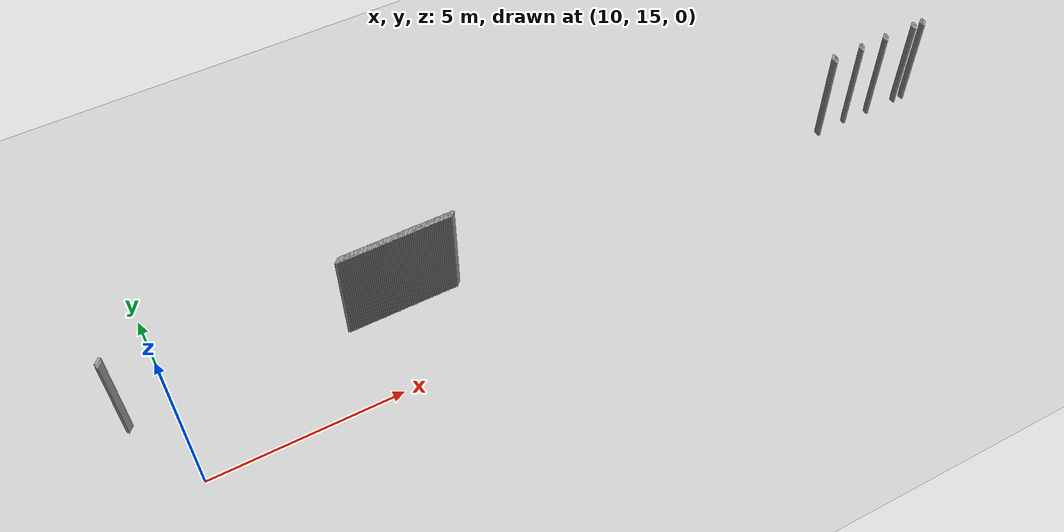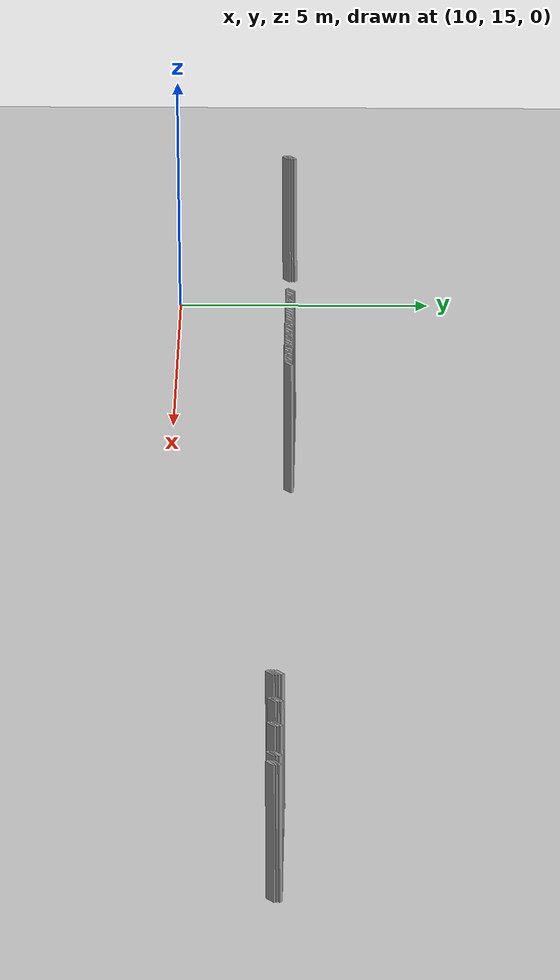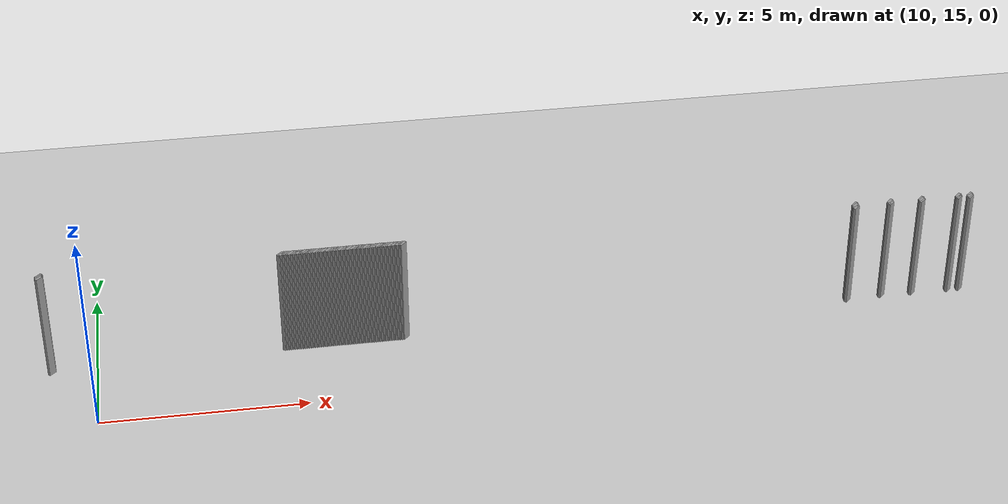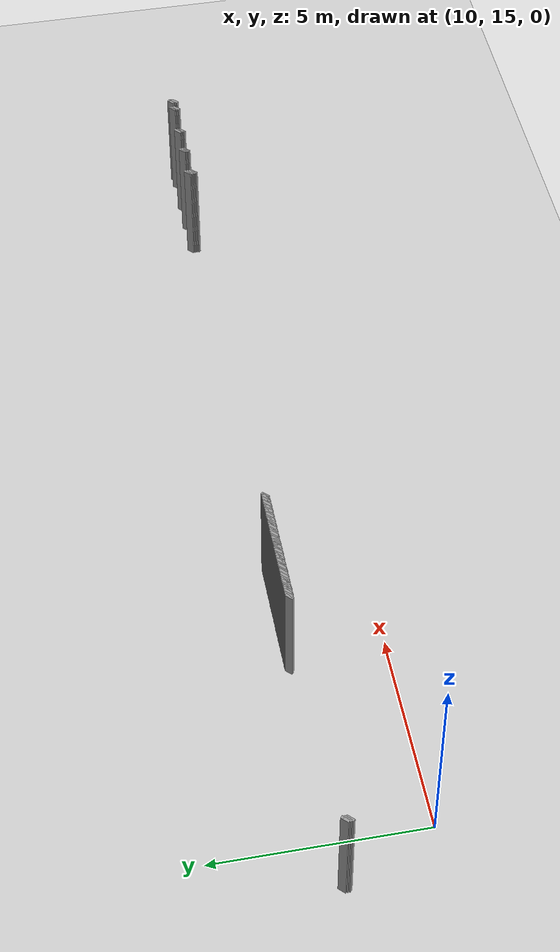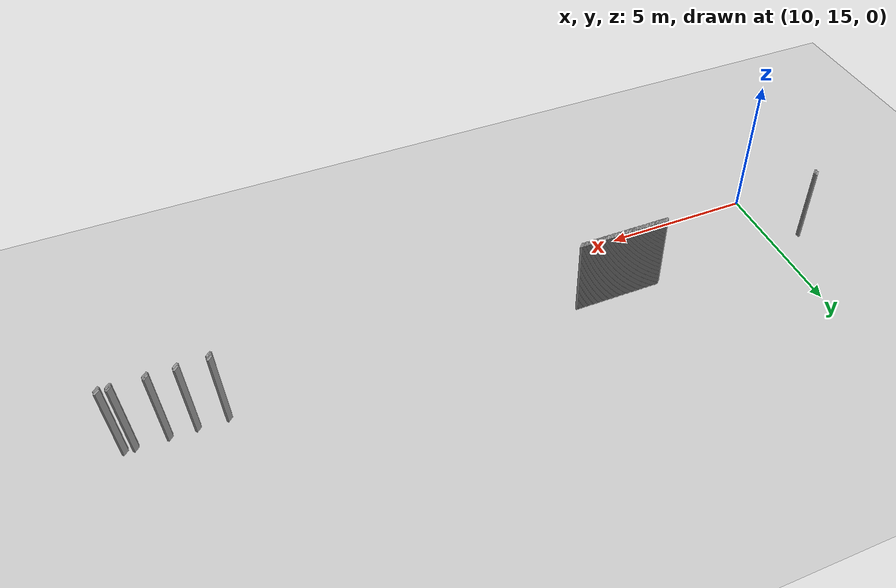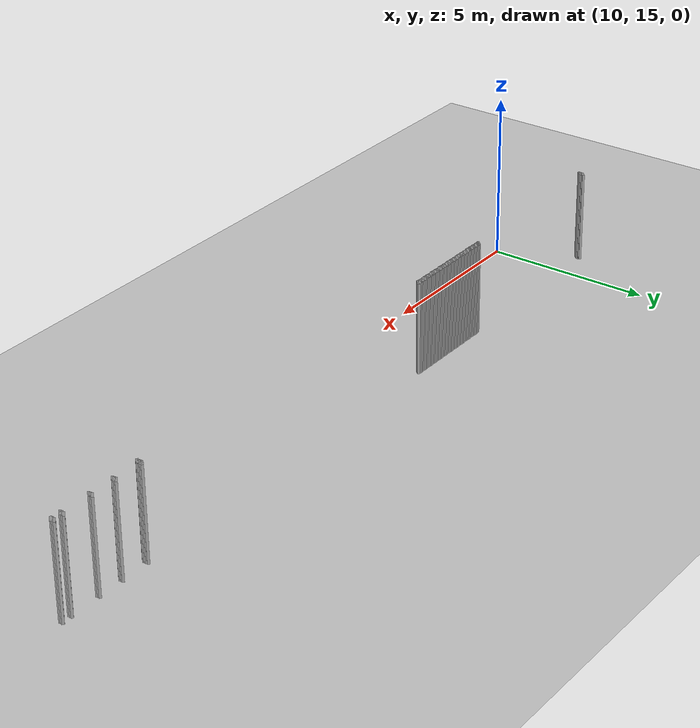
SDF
<sdf version="1.5">
 <world name="default">
  <include><uri>model://ground_plane</uri></include>
  <include><uri>model://sun</uri></include>
  <model name="grey_wall_947">
   <static>1</static>
   <link name="link">
    <pose>14.6 17.3  1.4 0 0 -0.785398163397</pose>
    <collision name="collision"><geometry><box><size>0.0707106781187 .2  2.8</size></box></geometry></collision>
    <visual name="visual">
     <cast_shadows>0</cast_shadows>
     <geometry><box><size>0.0707106781187 .2  2.8</size></box></geometry>
     <material>
      <script>
       <uri>model://grey_wall/materials/scripts</uri>
       <uri>model://grey_wall/materials/textures</uri>
       <name>vrc/grey_wall</name>
      </script>
     </material>
    </visual>
   </link>
  </model>
  <model name="grey_wall_948">
   <static>1</static>
   <link name="link">
    <pose>14.65 17.3  1.4 0 0 -0.785398163397</pose>
    <collision name="collision"><geometry><box><size>0.0707106781187 .2  2.8</size></box></geometry></collision>
    <visual name="visual">
     <cast_shadows>0</cast_shadows>
     <geometry><box><size>0.0707106781187 .2  2.8</size></box></geometry>
     <material>
      <script>
       <uri>model://grey_wall/materials/scripts</uri>
       <uri>model://grey_wall/materials/textures</uri>
       <name>vrc/grey_wall</name>
      </script>
     </material>
    </visual>
   </link>
  </model>
  <model name="grey_wall_949">
   <static>1</static>
   <link name="link">
    <pose>14.7 17.3  1.4 0 0 -0.785398163397</pose>
    <collision name="collision"><geometry><box><size>0.0707106781187 .2  2.8</size></box></geometry></collision>
    <visual name="visual">
     <cast_shadows>0</cast_shadows>
     <geometry><box><size>0.0707106781187 .2  2.8</size></box></geometry>
     <material>
      <script>
       <uri>model://grey_wall/materials/scripts</uri>
       <uri>model://grey_wall/materials/textures</uri>
       <name>vrc/grey_wall</name>
      </script>
     </material>
    </visual>
   </link>
  </model>
  <model name="grey_wall_950">
   <static>1</static>
   <link name="link">
    <pose>14.75 17.3  1.4 0 0 -0.785398163397</pose>
    <collision name="collision"><geometry><box><size>0.0707106781187 .2  2.8</size></box></geometry></collision>
    <visual name="visual">
     <cast_shadows>0</cast_shadows>
     <geometry><box><size>0.0707106781187 .2  2.8</size></box></geometry>
     <material>
      <script>
       <uri>model://grey_wall/materials/scripts</uri>
       <uri>model://grey_wall/materials/textures</uri>
       <name>vrc/grey_wall</name>
      </script>
     </material>
    </visual>
   </link>
  </model>
  <model name="grey_wall_951">
   <static>1</static>
   <link name="link">
    <pose>14.8 17.3  1.4 0 0 -0.785398163397</pose>
    <collision name="collision"><geometry><box><size>0.0707106781187 .2  2.8</size></box></geometry></collision>
    <visual name="visual">
     <cast_shadows>0</cast_shadows>
     <geometry><box><size>0.0707106781187 .2  2.8</size></box></geometry>
     <material>
      <script>
       <uri>model://grey_wall/materials/scripts</uri>
       <uri>model://grey_wall/materials/textures</uri>
       <name>vrc/grey_wall</name>
      </script>
     </material>
    </visual>
   </link>
  </model>
  <model name="grey_wall_952">
   <static>1</static>
   <link name="link">
    <pose>14.85 17.3  1.4 0 0 -0.785398163397</pose>
    <collision name="collision"><geometry><box><size>0.0707106781187 .2  2.8</size></box></geometry></collision>
    <visual name="visual">
     <cast_shadows>0</cast_shadows>
     <geometry><box><size>0.0707106781187 .2  2.8</size></box></geometry>
     <material>
      <script>
       <uri>model://grey_wall/materials/scripts</uri>
       <uri>model://grey_wall/materials/textures</uri>
       <name>vrc/grey_wall</name>
      </script>
     </material>
    </visual>
   </link>
  </model>
  <model name="grey_wall_953">
   <static>1</static>
   <link name="link">
    <pose>14.9 17.3  1.4 0 0 -0.785398163397</pose>
    <collision name="collision"><geometry><box><size>0.0707106781187 .2  2.8</size></box></geometry></collision>
    <visual name="visual">
     <cast_shadows>0</cast_shadows>
     <geometry><box><size>0.0707106781187 .2  2.8</size></box></geometry>
     <material>
      <script>
       <uri>model://grey_wall/materials/scripts</uri>
       <uri>model://grey_wall/materials/textures</uri>
       <name>vrc/grey_wall</name>
      </script>
     </material>
    </visual>
   </link>
  </model>
  <model name="grey_wall_954">
   <static>1</static>
   <link name="link">
    <pose>14.95 17.3  1.4 0 0 -0.785398163397</pose>
    <collision name="collision"><geometry><box><size>0.0707106781187 .2  2.8</size></box></geometry></collision>
    <visual name="visual">
     <cast_shadows>0</cast_shadows>
     <geometry><box><size>0.0707106781187 .2  2.8</size></box></geometry>
     <material>
      <script>
       <uri>model://grey_wall/materials/scripts</uri>
       <uri>model://grey_wall/materials/textures</uri>
       <name>vrc/grey_wall</name>
      </script>
     </material>
    </visual>
   </link>
  </model>
  <model name="grey_wall_955">
   <static>1</static>
   <link name="link">
    <pose>15.0 17.3  1.4 0 0 -0.785398163397</pose>
    <collision name="collision"><geometry><box><size>0.0707106781187 .2  2.8</size></box></geometry></collision>
    <visual name="visual">
     <cast_shadows>0</cast_shadows>
     <geometry><box><size>0.0707106781187 .2  2.8</size></box></geometry>
     <material>
      <script>
       <uri>model://grey_wall/materials/scripts</uri>
       <uri>model://grey_wall/materials/textures</uri>
       <name>vrc/grey_wall</name>
      </script>
     </material>
    </visual>
   </link>
  </model>
  <model name="grey_wall_956">
   <static>1</static>
   <link name="link">
    <pose>15.05 17.3  1.4 0 0 -0.785398163397</pose>
    <collision name="collision"><geometry><box><size>0.0707106781187 .2  2.8</size></box></geometry></collision>
    <visual name="visual">
     <cast_shadows>0</cast_shadows>
     <geometry><box><size>0.0707106781187 .2  2.8</size></box></geometry>
     <material>
      <script>
       <uri>model://grey_wall/materials/scripts</uri>
       <uri>model://grey_wall/materials/textures</uri>
       <name>vrc/grey_wall</name>
      </script>
     </material>
    </visual>
   </link>
  </model>
  <model name="grey_wall_957">
   <static>1</static>
   <link name="link">
    <pose>15.1 17.3  1.4 0 0 -0.785398163397</pose>
    <collision name="collision"><geometry><box><size>0.0707106781187 .2  2.8</size></box></geometry></collision>
    <visual name="visual">
     <cast_shadows>0</cast_shadows>
     <geometry><box><size>0.0707106781187 .2  2.8</size></box></geometry>
     <material>
      <script>
       <uri>model://grey_wall/materials/scripts</uri>
       <uri>model://grey_wall/materials/textures</uri>
       <name>vrc/grey_wall</name>
      </script>
     </material>
    </visual>
   </link>
  </model>
  <model name="grey_wall_958">
   <static>1</static>
   <link name="link">
    <pose>15.15 17.3  1.4 0 0 -0.785398163397</pose>
    <collision name="collision"><geometry><box><size>0.0707106781187 .2  2.8</size></box></geometry></collision>
    <visual name="visual">
     <cast_shadows>0</cast_shadows>
     <geometry><box><size>0.0707106781187 .2  2.8</size></box></geometry>
     <material>
      <script>
       <uri>model://grey_wall/materials/scripts</uri>
       <uri>model://grey_wall/materials/textures</uri>
       <name>vrc/grey_wall</name>
      </script>
     </material>
    </visual>
   </link>
  </model>
  <model name="grey_wall_959">
   <static>1</static>
   <link name="link">
    <pose>15.2 17.3  1.4 0 0 -0.785398163397</pose>
    <collision name="collision"><geometry><box><size>0.0707106781187 .2  2.8</size></box></geometry></collision>
    <visual name="visual">
     <cast_shadows>0</cast_shadows>
     <geometry><box><size>0.0707106781187 .2  2.8</size></box></geometry>
     <material>
      <script>
       <uri>model://grey_wall/materials/scripts</uri>
       <uri>model://grey_wall/materials/textures</uri>
       <name>vrc/grey_wall</name>
      </script>
     </material>
    </visual>
   </link>
  </model>
  <model name="grey_wall_960">
   <static>1</static>
   <link name="link">
    <pose>15.25 17.3  1.4 0 0 -0.785398163397</pose>
    <collision name="collision"><geometry><box><size>0.0707106781187 .2  2.8</size></box></geometry></collision>
    <visual name="visual">
     <cast_shadows>0</cast_shadows>
     <geometry><box><size>0.0707106781187 .2  2.8</size></box></geometry>
     <material>
      <script>
       <uri>model://grey_wall/materials/scripts</uri>
       <uri>model://grey_wall/materials/textures</uri>
       <name>vrc/grey_wall</name>
      </script>
     </material>
    </visual>
   </link>
  </model>
  <model name="grey_wall_961">
   <static>1</static>
   <link name="link">
    <pose>15.3 17.3  1.4 0 0 -0.785398163397</pose>
    <collision name="collision"><geometry><box><size>0.0707106781187 .2  2.8</size></box></geometry></collision>
    <visual name="visual">
     <cast_shadows>0</cast_shadows>
     <geometry><box><size>0.0707106781187 .2  2.8</size></box></geometry>
     <material>
      <script>
       <uri>model://grey_wall/materials/scripts</uri>
       <uri>model://grey_wall/materials/textures</uri>
       <name>vrc/grey_wall</name>
      </script>
     </material>
    </visual>
   </link>
  </model>
  <model name="grey_wall_962">
   <static>1</static>
   <link name="link">
    <pose>15.35 17.3  1.4 0 0 -0.785398163397</pose>
    <collision name="collision"><geometry><box><size>0.0707106781187 .2  2.8</size></box></geometry></collision>
    <visual name="visual">
     <cast_shadows>0</cast_shadows>
     <geometry><box><size>0.0707106781187 .2  2.8</size></box></geometry>
     <material>
      <script>
       <uri>model://grey_wall/materials/scripts</uri>
       <uri>model://grey_wall/materials/textures</uri>
       <name>vrc/grey_wall</name>
      </script>
     </material>
    </visual>
   </link>
  </model>
  <model name="grey_wall_963">
   <static>1</static>
   <link name="link">
    <pose>15.4 17.3  1.4 0 0 -0.785398163397</pose>
    <collision name="collision"><geometry><box><size>0.0707106781187 .2  2.8</size></box></geometry></collision>
    <visual name="visual">
     <cast_shadows>0</cast_shadows>
     <geometry><box><size>0.0707106781187 .2  2.8</size></box></geometry>
     <material>
      <script>
       <uri>model://grey_wall/materials/scripts</uri>
       <uri>model://grey_wall/materials/textures</uri>
       <name>vrc/grey_wall</name>
      </script>
     </material>
    </visual>
   </link>
  </model>
  <model name="grey_wall_964">
   <static>1</static>
   <link name="link">
    <pose>15.45 17.3  1.4 0 0 -0.785398163397</pose>
    <collision name="collision"><geometry><box><size>0.0707106781187 .2  2.8</size></box></geometry></collision>
    <visual name="visual">
     <cast_shadows>0</cast_shadows>
     <geometry><box><size>0.0707106781187 .2  2.8</size></box></geometry>
     <material>
      <script>
       <uri>model://grey_wall/materials/scripts</uri>
       <uri>model://grey_wall/materials/textures</uri>
       <name>vrc/grey_wall</name>
      </script>
     </material>
    </visual>
   </link>
  </model>
  <model name="grey_wall_965">
   <static>1</static>
   <link name="link">
    <pose>15.5 17.3  1.4 0 0 -0.785398163397</pose>
    <collision name="collision"><geometry><box><size>0.0707106781187 .2  2.8</size></box></geometry></collision>
    <visual name="visual">
     <cast_shadows>0</cast_shadows>
     <geometry><box><size>0.0707106781187 .2  2.8</size></box></geometry>
     <material>
      <script>
       <uri>model://grey_wall/materials/scripts</uri>
       <uri>model://grey_wall/materials/textures</uri>
       <name>vrc/grey_wall</name>
      </script>
     </material>
    </visual>
   </link>
  </model>
  <model name="grey_wall_966">
   <static>1</static>
   <link name="link">
    <pose>15.55 17.3  1.4 0 0 -0.785398163397</pose>
    <collision name="collision"><geometry><box><size>0.0707106781187 .2  2.8</size></box></geometry></collision>
    <visual name="visual">
     <cast_shadows>0</cast_shadows>
     <geometry><box><size>0.0707106781187 .2  2.8</size></box></geometry>
     <material>
      <script>
       <uri>model://grey_wall/materials/scripts</uri>
       <uri>model://grey_wall/materials/textures</uri>
       <name>vrc/grey_wall</name>
      </script>
     </material>
    </visual>
   </link>
  </model>
  <model name="grey_wall_967">
   <static>1</static>
   <link name="link">
    <pose>15.6 17.3  1.4 0 0 -0.785398163397</pose>
    <collision name="collision"><geometry><box><size>0.0707106781187 .2  2.8</size></box></geometry></collision>
    <visual name="visual">
     <cast_shadows>0</cast_shadows>
     <geometry><box><size>0.0707106781187 .2  2.8</size></box></geometry>
     <material>
      <script>
       <uri>model://grey_wall/materials/scripts</uri>
       <uri>model://grey_wall/materials/textures</uri>
       <name>vrc/grey_wall</name>
      </script>
     </material>
    </visual>
   </link>
  </model>
  <model name="grey_wall_968">
   <static>1</static>
   <link name="link">
    <pose>15.65 17.3  1.4 0 0 -0.785398163397</pose>
    <collision name="collision"><geometry><box><size>0.0707106781187 .2  2.8</size></box></geometry></collision>
    <visual name="visual">
     <cast_shadows>0</cast_shadows>
     <geometry><box><size>0.0707106781187 .2  2.8</size></box></geometry>
     <material>
      <script>
       <uri>model://grey_wall/materials/scripts</uri>
       <uri>model://grey_wall/materials/textures</uri>
       <name>vrc/grey_wall</name>
      </script>
     </material>
    </visual>
   </link>
  </model>
  <model name="grey_wall_969">
   <static>1</static>
   <link name="link">
    <pose>15.7 17.3  1.4 0 0 -0.785398163397</pose>
    <collision name="collision"><geometry><box><size>0.0707106781187 .2  2.8</size></box></geometry></collision>
    <visual name="visual">
     <cast_shadows>0</cast_shadows>
     <geometry><box><size>0.0707106781187 .2  2.8</size></box></geometry>
     <material>
      <script>
       <uri>model://grey_wall/materials/scripts</uri>
       <uri>model://grey_wall/materials/textures</uri>
       <name>vrc/grey_wall</name>
      </script>
     </material>
    </visual>
   </link>
  </model>
  <model name="grey_wall_970">
   <static>1</static>
   <link name="link">
    <pose>15.75 17.3  1.4 0 0 -0.785398163397</pose>
    <collision name="collision"><geometry><box><size>0.0707106781187 .2  2.8</size></box></geometry></collision>
    <visual name="visual">
     <cast_shadows>0</cast_shadows>
     <geometry><box><size>0.0707106781187 .2  2.8</size></box></geometry>
     <material>
      <script>
       <uri>model://grey_wall/materials/scripts</uri>
       <uri>model://grey_wall/materials/textures</uri>
       <name>vrc/grey_wall</name>
      </script>
     </material>
    </visual>
   </link>
  </model>
  <model name="grey_wall_971">
   <static>1</static>
   <link name="link">
    <pose>15.8 17.3  1.4 0 0 -0.785398163397</pose>
    <collision name="collision"><geometry><box><size>0.0707106781187 .2  2.8</size></box></geometry></collision>
    <visual name="visual">
     <cast_shadows>0</cast_shadows>
     <geometry><box><size>0.0707106781187 .2  2.8</size></box></geometry>
     <material>
      <script>
       <uri>model://grey_wall/materials/scripts</uri>
       <uri>model://grey_wall/materials/textures</uri>
       <name>vrc/grey_wall</name>
      </script>
     </material>
    </visual>
   </link>
  </model>
  <model name="grey_wall_972">
   <static>1</static>
   <link name="link">
    <pose>15.85 17.3  1.4 0 0 -0.785398163397</pose>
    <collision name="collision"><geometry><box><size>0.0707106781187 .2  2.8</size></box></geometry></collision>
    <visual name="visual">
     <cast_shadows>0</cast_shadows>
     <geometry><box><size>0.0707106781187 .2  2.8</size></box></geometry>
     <material>
      <script>
       <uri>model://grey_wall/materials/scripts</uri>
       <uri>model://grey_wall/materials/textures</uri>
       <name>vrc/grey_wall</name>
      </script>
     </material>
    </visual>
   </link>
  </model>
  <model name="grey_wall_973">
   <static>1</static>
   <link name="link">
    <pose>15.9 17.3  1.4 0 0 -0.785398163397</pose>
    <collision name="collision"><geometry><box><size>0.0707106781187 .2  2.8</size></box></geometry></collision>
    <visual name="visual">
     <cast_shadows>0</cast_shadows>
     <geometry><box><size>0.0707106781187 .2  2.8</size></box></geometry>
     <material>
      <script>
       <uri>model://grey_wall/materials/scripts</uri>
       <uri>model://grey_wall/materials/textures</uri>
       <name>vrc/grey_wall</name>
      </script>
     </material>
    </visual>
   </link>
  </model>
  <model name="grey_wall_974">
   <static>1</static>
   <link name="link">
    <pose>15.95 17.3  1.4 0 0 -0.785398163397</pose>
    <collision name="collision"><geometry><box><size>0.0707106781187 .2  2.8</size></box></geometry></collision>
    <visual name="visual">
     <cast_shadows>0</cast_shadows>
     <geometry><box><size>0.0707106781187 .2  2.8</size></box></geometry>
     <material>
      <script>
       <uri>model://grey_wall/materials/scripts</uri>
       <uri>model://grey_wall/materials/textures</uri>
       <name>vrc/grey_wall</name>
      </script>
     </material>
    </visual>
   </link>
  </model>
  <model name="grey_wall_975">
   <static>1</static>
   <link name="link">
    <pose>16.0 17.3  1.4 0 0 -0.785398163397</pose>
    <collision name="collision"><geometry><box><size>0.0707106781187 .2  2.8</size></box></geometry></collision>
    <visual name="visual">
     <cast_shadows>0</cast_shadows>
     <geometry><box><size>0.0707106781187 .2  2.8</size></box></geometry>
     <material>
      <script>
       <uri>model://grey_wall/materials/scripts</uri>
       <uri>model://grey_wall/materials/textures</uri>
       <name>vrc/grey_wall</name>
      </script>
     </material>
    </visual>
   </link>
  </model>
  <model name="grey_wall_976">
   <static>1</static>
   <link name="link">
    <pose>16.05 17.3  1.4 0 0 -0.785398163397</pose>
    <collision name="collision"><geometry><box><size>0.0707106781187 .2  2.8</size></box></geometry></collision>
    <visual name="visual">
     <cast_shadows>0</cast_shadows>
     <geometry><box><size>0.0707106781187 .2  2.8</size></box></geometry>
     <material>
      <script>
       <uri>model://grey_wall/materials/scripts</uri>
       <uri>model://grey_wall/materials/textures</uri>
       <name>vrc/grey_wall</name>
      </script>
     </material>
    </visual>
   </link>
  </model>
  <model name="grey_wall_977">
   <static>1</static>
   <link name="link">
    <pose>16.1 17.3  1.4 0 0 -0.785398163397</pose>
    <collision name="collision"><geometry><box><size>0.0707106781187 .2  2.8</size></box></geometry></collision>
    <visual name="visual">
     <cast_shadows>0</cast_shadows>
     <geometry><box><size>0.0707106781187 .2  2.8</size></box></geometry>
     <material>
      <script>
       <uri>model://grey_wall/materials/scripts</uri>
       <uri>model://grey_wall/materials/textures</uri>
       <name>vrc/grey_wall</name>
      </script>
     </material>
    </visual>
   </link>
  </model>
  <model name="grey_wall_978">
   <static>1</static>
   <link name="link">
    <pose>16.15 17.3  1.4 0 0 -0.785398163397</pose>
    <collision name="collision"><geometry><box><size>0.0707106781187 .2  2.8</size></box></geometry></collision>
    <visual name="visual">
     <cast_shadows>0</cast_shadows>
     <geometry><box><size>0.0707106781187 .2  2.8</size></box></geometry>
     <material>
      <script>
       <uri>model://grey_wall/materials/scripts</uri>
       <uri>model://grey_wall/materials/textures</uri>
       <name>vrc/grey_wall</name>
      </script>
     </material>
    </visual>
   </link>
  </model>
  <model name="grey_wall_979">
   <static>1</static>
   <link name="link">
    <pose>16.2 17.3  1.4 0 0 -0.785398163397</pose>
    <collision name="collision"><geometry><box><size>0.0707106781187 .2  2.8</size></box></geometry></collision>
    <visual name="visual">
     <cast_shadows>0</cast_shadows>
     <geometry><box><size>0.0707106781187 .2  2.8</size></box></geometry>
     <material>
      <script>
       <uri>model://grey_wall/materials/scripts</uri>
       <uri>model://grey_wall/materials/textures</uri>
       <name>vrc/grey_wall</name>
      </script>
     </material>
    </visual>
   </link>
  </model>
  <model name="grey_wall_980">
   <static>1</static>
   <link name="link">
    <pose>16.25 17.3  1.4 0 0 -0.785398163397</pose>
    <collision name="collision"><geometry><box><size>0.0707106781187 .2  2.8</size></box></geometry></collision>
    <visual name="visual">
     <cast_shadows>0</cast_shadows>
     <geometry><box><size>0.0707106781187 .2  2.8</size></box></geometry>
     <material>
      <script>
       <uri>model://grey_wall/materials/scripts</uri>
       <uri>model://grey_wall/materials/textures</uri>
       <name>vrc/grey_wall</name>
      </script>
     </material>
    </visual>
   </link>
  </model>
  <model name="grey_wall_981">
   <static>1</static>
   <link name="link">
    <pose>16.3 17.3  1.4 0 0 -0.785398163397</pose>
    <collision name="collision"><geometry><box><size>0.0707106781187 .2  2.8</size></box></geometry></collision>
    <visual name="visual">
     <cast_shadows>0</cast_shadows>
     <geometry><box><size>0.0707106781187 .2  2.8</size></box></geometry>
     <material>
      <script>
       <uri>model://grey_wall/materials/scripts</uri>
       <uri>model://grey_wall/materials/textures</uri>
       <name>vrc/grey_wall</name>
      </script>
     </material>
    </visual>
   </link>
  </model>
  <model name="grey_wall_982">
   <static>1</static>
   <link name="link">
    <pose>16.35 17.3  1.4 0 0 -0.785398163397</pose>
    <collision name="collision"><geometry><box><size>0.0707106781187 .2  2.8</size></box></geometry></collision>
    <visual name="visual">
     <cast_shadows>0</cast_shadows>
     <geometry><box><size>0.0707106781187 .2  2.8</size></box></geometry>
     <material>
      <script>
       <uri>model://grey_wall/materials/scripts</uri>
       <uri>model://grey_wall/materials/textures</uri>
       <name>vrc/grey_wall</name>
      </script>
     </material>
    </visual>
   </link>
  </model>
  <model name="grey_wall_983">
   <static>1</static>
   <link name="link">
    <pose>16.4 17.3  1.4 0 0 -0.785398163397</pose>
    <collision name="collision"><geometry><box><size>0.0707106781187 .2  2.8</size></box></geometry></collision>
    <visual name="visual">
     <cast_shadows>0</cast_shadows>
     <geometry><box><size>0.0707106781187 .2  2.8</size></box></geometry>
     <material>
      <script>
       <uri>model://grey_wall/materials/scripts</uri>
       <uri>model://grey_wall/materials/textures</uri>
       <name>vrc/grey_wall</name>
      </script>
     </material>
    </visual>
   </link>
  </model>
  <model name="grey_wall_984">
   <static>1</static>
   <link name="link">
    <pose>16.45 17.3  1.4 0 0 -0.785398163397</pose>
    <collision name="collision"><geometry><box><size>0.0707106781187 .2  2.8</size></box></geometry></collision>
    <visual name="visual">
     <cast_shadows>0</cast_shadows>
     <geometry><box><size>0.0707106781187 .2  2.8</size></box></geometry>
     <material>
      <script>
       <uri>model://grey_wall/materials/scripts</uri>
       <uri>model://grey_wall/materials/textures</uri>
       <name>vrc/grey_wall</name>
      </script>
     </material>
    </visual>
   </link>
  </model>
  <model name="grey_wall_985">
   <static>1</static>
   <link name="link">
    <pose>16.5 17.3  1.4 0 0 -0.785398163397</pose>
    <collision name="collision"><geometry><box><size>0.0707106781187 .2  2.8</size></box></geometry></collision>
    <visual name="visual">
     <cast_shadows>0</cast_shadows>
     <geometry><box><size>0.0707106781187 .2  2.8</size></box></geometry>
     <material>
      <script>
       <uri>model://grey_wall/materials/scripts</uri>
       <uri>model://grey_wall/materials/textures</uri>
       <name>vrc/grey_wall</name>
      </script>
     </material>
    </visual>
   </link>
  </model>
  <model name="grey_wall_986">
   <static>1</static>
   <link name="link">
    <pose>16.55 17.3  1.4 0 0 -0.785398163397</pose>
    <collision name="collision"><geometry><box><size>0.0707106781187 .2  2.8</size></box></geometry></collision>
    <visual name="visual">
     <cast_shadows>0</cast_shadows>
     <geometry><box><size>0.0707106781187 .2  2.8</size></box></geometry>
     <material>
      <script>
       <uri>model://grey_wall/materials/scripts</uri>
       <uri>model://grey_wall/materials/textures</uri>
       <name>vrc/grey_wall</name>
      </script>
     </material>
    </visual>
   </link>
  </model>
  <model name="grey_wall_987">
   <static>1</static>
   <link name="link">
    <pose>16.6 17.3  1.4 0 0 -0.785398163397</pose>
    <collision name="collision"><geometry><box><size>0.0707106781187 .2  2.8</size></box></geometry></collision>
    <visual name="visual">
     <cast_shadows>0</cast_shadows>
     <geometry><box><size>0.0707106781187 .2  2.8</size></box></geometry>
     <material>
      <script>
       <uri>model://grey_wall/materials/scripts</uri>
       <uri>model://grey_wall/materials/textures</uri>
       <name>vrc/grey_wall</name>
      </script>
     </material>
    </visual>
   </link>
  </model>
  <model name="grey_wall_988">
   <static>1</static>
   <link name="link">
    <pose>16.65 17.3  1.4 0 0 -0.785398163397</pose>
    <collision name="collision"><geometry><box><size>0.0707106781187 .2  2.8</size></box></geometry></collision>
    <visual name="visual">
     <cast_shadows>0</cast_shadows>
     <geometry><box><size>0.0707106781187 .2  2.8</size></box></geometry>
     <material>
      <script>
       <uri>model://grey_wall/materials/scripts</uri>
       <uri>model://grey_wall/materials/textures</uri>
       <name>vrc/grey_wall</name>
      </script>
     </material>
    </visual>
   </link>
  </model>
  <model name="grey_wall_989">
   <static>1</static>
   <link name="link">
    <pose>16.7 17.3  1.4 0 0 -0.785398163397</pose>
    <collision name="collision"><geometry><box><size>0.0707106781187 .2  2.8</size></box></geometry></collision>
    <visual name="visual">
     <cast_shadows>0</cast_shadows>
     <geometry><box><size>0.0707106781187 .2  2.8</size></box></geometry>
     <material>
      <script>
       <uri>model://grey_wall/materials/scripts</uri>
       <uri>model://grey_wall/materials/textures</uri>
       <name>vrc/grey_wall</name>
      </script>
     </material>
    </visual>
   </link>
  </model>
  <model name="grey_wall_990">
   <static>1</static>
   <link name="link">
    <pose>16.75 17.3  1.4 0 0 -0.785398163397</pose>
    <collision name="collision"><geometry><box><size>0.0707106781187 .2  2.8</size></box></geometry></collision>
    <visual name="visual">
     <cast_shadows>0</cast_shadows>
     <geometry><box><size>0.0707106781187 .2  2.8</size></box></geometry>
     <material>
      <script>
       <uri>model://grey_wall/materials/scripts</uri>
       <uri>model://grey_wall/materials/textures</uri>
       <name>vrc/grey_wall</name>
      </script>
     </material>
    </visual>
   </link>
  </model>
  <model name="grey_wall_991">
   <static>1</static>
   <link name="link">
    <pose>16.8 17.3  1.4 0 0 -0.785398163397</pose>
    <collision name="collision"><geometry><box><size>0.0707106781187 .2  2.8</size></box></geometry></collision>
    <visual name="visual">
     <cast_shadows>0</cast_shadows>
     <geometry><box><size>0.0707106781187 .2  2.8</size></box></geometry>
     <material>
      <script>
       <uri>model://grey_wall/materials/scripts</uri>
       <uri>model://grey_wall/materials/textures</uri>
       <name>vrc/grey_wall</name>
      </script>
     </material>
    </visual>
   </link>
  </model>
  <model name="grey_wall_992">
   <static>1</static>
   <link name="link">
    <pose>16.85 17.3  1.4 0 0 -0.785398163397</pose>
    <collision name="collision"><geometry><box><size>0.0707106781187 .2  2.8</size></box></geometry></collision>
    <visual name="visual">
     <cast_shadows>0</cast_shadows>
     <geometry><box><size>0.0707106781187 .2  2.8</size></box></geometry>
     <material>
      <script>
       <uri>model://grey_wall/materials/scripts</uri>
       <uri>model://grey_wall/materials/textures</uri>
       <name>vrc/grey_wall</name>
      </script>
     </material>
    </visual>
   </link>
  </model>
  <model name="grey_wall_993">
   <static>1</static>
   <link name="link">
    <pose>16.9 17.3  1.4 0 0 -0.785398163397</pose>
    <collision name="collision"><geometry><box><size>0.0707106781187 .2  2.8</size></box></geometry></collision>
    <visual name="visual">
     <cast_shadows>0</cast_shadows>
     <geometry><box><size>0.0707106781187 .2  2.8</size></box></geometry>
     <material>
      <script>
       <uri>model://grey_wall/materials/scripts</uri>
       <uri>model://grey_wall/materials/textures</uri>
       <name>vrc/grey_wall</name>
      </script>
     </material>
    </visual>
   </link>
  </model>
  <model name="grey_wall_994">
   <static>1</static>
   <link name="link">
    <pose>16.95 17.3  1.4 0 0 -0.785398163397</pose>
    <collision name="collision"><geometry><box><size>0.0707106781187 .2  2.8</size></box></geometry></collision>
    <visual name="visual">
     <cast_shadows>0</cast_shadows>
     <geometry><box><size>0.0707106781187 .2  2.8</size></box></geometry>
     <material>
      <script>
       <uri>model://grey_wall/materials/scripts</uri>
       <uri>model://grey_wall/materials/textures</uri>
       <name>vrc/grey_wall</name>
      </script>
     </material>
    </visual>
   </link>
  </model>
  <model name="grey_wall_995">
   <static>1</static>
   <link name="link">
    <pose>17.0 17.3  1.4 0 0 -0.785398163397</pose>
    <collision name="collision"><geometry><box><size>0.0707106781187 .2  2.8</size></box></geometry></collision>
    <visual name="visual">
     <cast_shadows>0</cast_shadows>
     <geometry><box><size>0.0707106781187 .2  2.8</size></box></geometry>
     <material>
      <script>
       <uri>model://grey_wall/materials/scripts</uri>
       <uri>model://grey_wall/materials/textures</uri>
       <name>vrc/grey_wall</name>
      </script>
     </material>
    </visual>
   </link>
  </model>
  <model name="grey_wall_996">
   <static>1</static>
   <link name="link">
    <pose>17.05 17.3  1.4 0 0 -0.785398163397</pose>
    <collision name="collision"><geometry><box><size>0.0707106781187 .2  2.8</size></box></geometry></collision>
    <visual name="visual">
     <cast_shadows>0</cast_shadows>
     <geometry><box><size>0.0707106781187 .2  2.8</size></box></geometry>
     <material>
      <script>
       <uri>model://grey_wall/materials/scripts</uri>
       <uri>model://grey_wall/materials/textures</uri>
       <name>vrc/grey_wall</name>
      </script>
     </material>
    </visual>
   </link>
  </model>
  <model name="grey_wall_997">
   <static>1</static>
   <link name="link">
    <pose>17.1 17.3  1.4 0 0 -0.785398163397</pose>
    <collision name="collision"><geometry><box><size>0.0707106781187 .2  2.8</size></box></geometry></collision>
    <visual name="visual">
     <cast_shadows>0</cast_shadows>
     <geometry><box><size>0.0707106781187 .2  2.8</size></box></geometry>
     <material>
      <script>
       <uri>model://grey_wall/materials/scripts</uri>
       <uri>model://grey_wall/materials/textures</uri>
       <name>vrc/grey_wall</name>
      </script>
     </material>
    </visual>
   </link>
  </model>
  <model name="grey_wall_998">
   <static>1</static>
   <link name="link">
    <pose>17.15 17.3  1.4 0 0 -0.785398163397</pose>
    <collision name="collision"><geometry><box><size>0.0707106781187 .2  2.8</size></box></geometry></collision>
    <visual name="visual">
     <cast_shadows>0</cast_shadows>
     <geometry><box><size>0.0707106781187 .2  2.8</size></box></geometry>
     <material>
      <script>
       <uri>model://grey_wall/materials/scripts</uri>
       <uri>model://grey_wall/materials/textures</uri>
       <name>vrc/grey_wall</name>
      </script>
     </material>
    </visual>
   </link>
  </model>
  <model name="grey_wall_999">
   <static>1</static>
   <link name="link">
    <pose>17.2 17.3  1.4 0 0 -0.785398163397</pose>
    <collision name="collision"><geometry><box><size>0.0707106781187 .2  2.8</size></box></geometry></collision>
    <visual name="visual">
     <cast_shadows>0</cast_shadows>
     <geometry><box><size>0.0707106781187 .2  2.8</size></box></geometry>
     <material>
      <script>
       <uri>model://grey_wall/materials/scripts</uri>
       <uri>model://grey_wall/materials/textures</uri>
       <name>vrc/grey_wall</name>
      </script>
     </material>
    </visual>
   </link>
  </model>
  <model name="grey_wall_1000">
   <static>1</static>
   <link name="link">
    <pose>17.25 17.3  1.4 0 0 -0.785398163397</pose>
    <collision name="collision"><geometry><box><size>0.0707106781187 .2  2.8</size></box></geometry></collision>
    <visual name="visual">
     <cast_shadows>0</cast_shadows>
     <geometry><box><size>0.0707106781187 .2  2.8</size></box></geometry>
     <material>
      <script>
       <uri>model://grey_wall/materials/scripts</uri>
       <uri>model://grey_wall/materials/textures</uri>
       <name>vrc/grey_wall</name>
      </script>
     </material>
    </visual>
   </link>
  </model>
  <model name="grey_wall_1001">
   <static>1</static>
   <link name="link">
    <pose>17.3 17.3  1.4 0 0 -0.785398163397</pose>
    <collision name="collision"><geometry><box><size>0.0707106781187 .2  2.8</size></box></geometry></collision>
    <visual name="visual">
     <cast_shadows>0</cast_shadows>
     <geometry><box><size>0.0707106781187 .2  2.8</size></box></geometry>
     <material>
      <script>
       <uri>model://grey_wall/materials/scripts</uri>
       <uri>model://grey_wall/materials/textures</uri>
       <name>vrc/grey_wall</name>
      </script>
     </material>
    </visual>
   </link>
  </model>
  <model name="grey_wall_1002">
   <static>1</static>
   <link name="link">
    <pose>17.35 17.3  1.4 0 0 -0.785398163397</pose>
    <collision name="collision"><geometry><box><size>0.0707106781187 .2  2.8</size></box></geometry></collision>
    <visual name="visual">
     <cast_shadows>0</cast_shadows>
     <geometry><box><size>0.0707106781187 .2  2.8</size></box></geometry>
     <material>
      <script>
       <uri>model://grey_wall/materials/scripts</uri>
       <uri>model://grey_wall/materials/textures</uri>
       <name>vrc/grey_wall</name>
      </script>
     </material>
    </visual>
   </link>
  </model>
  <model name="grey_wall_1003">
   <static>1</static>
   <link name="link">
    <pose>17.4 17.3  1.4 0 0 -0.785398163397</pose>
    <collision name="collision"><geometry><box><size>0.0707106781187 .2  2.8</size></box></geometry></collision>
    <visual name="visual">
     <cast_shadows>0</cast_shadows>
     <geometry><box><size>0.0707106781187 .2  2.8</size></box></geometry>
     <material>
      <script>
       <uri>model://grey_wall/materials/scripts</uri>
       <uri>model://grey_wall/materials/textures</uri>
       <name>vrc/grey_wall</name>
      </script>
     </material>
    </visual>
   </link>
  </model>
  <model name="grey_wall_1004">
   <static>1</static>
   <link name="link">
    <pose>17.45 17.3  1.4 0 0 -0.785398163397</pose>
    <collision name="collision"><geometry><box><size>0.0707106781187 .2  2.8</size></box></geometry></collision>
    <visual name="visual">
     <cast_shadows>0</cast_shadows>
     <geometry><box><size>0.0707106781187 .2  2.8</size></box></geometry>
     <material>
      <script>
       <uri>model://grey_wall/materials/scripts</uri>
       <uri>model://grey_wall/materials/textures</uri>
       <name>vrc/grey_wall</name>
      </script>
     </material>
    </visual>
   </link>
  </model>
  <model name="grey_wall_1005">
   <static>1</static>
   <link name="link">
    <pose>17.5 17.3  1.4 0 0 -0.785398163397</pose>
    <collision name="collision"><geometry><box><size>0.0707106781187 .2  2.8</size></box></geometry></collision>
    <visual name="visual">
     <cast_shadows>0</cast_shadows>
     <geometry><box><size>0.0707106781187 .2  2.8</size></box></geometry>
     <material>
      <script>
       <uri>model://grey_wall/materials/scripts</uri>
       <uri>model://grey_wall/materials/textures</uri>
       <name>vrc/grey_wall</name>
      </script>
     </material>
    </visual>
   </link>
  </model>
  <model name="grey_wall_1006">
   <static>1</static>
   <link name="link">
    <pose>17.55 17.3  1.4 0 0 -0.785398163397</pose>
    <collision name="collision"><geometry><box><size>0.0707106781187 .2  2.8</size></box></geometry></collision>
    <visual name="visual">
     <cast_shadows>0</cast_shadows>
     <geometry><box><size>0.0707106781187 .2  2.8</size></box></geometry>
     <material>
      <script>
       <uri>model://grey_wall/materials/scripts</uri>
       <uri>model://grey_wall/materials/textures</uri>
       <name>vrc/grey_wall</name>
      </script>
     </material>
    </visual>
   </link>
  </model>
  <model name="grey_wall_1007">
   <static>1</static>
   <link name="link">
    <pose>28.8 17.3  1.4 0 0 -0.785398163397</pose>
    <collision name="collision"><geometry><box><size>0.0707106781187 .2  2.8</size></box></geometry></collision>
    <visual name="visual">
     <cast_shadows>0</cast_shadows>
     <geometry><box><size>0.0707106781187 .2  2.8</size></box></geometry>
     <material>
      <script>
       <uri>model://grey_wall/materials/scripts</uri>
       <uri>model://grey_wall/materials/textures</uri>
       <name>vrc/grey_wall</name>
      </script>
     </material>
    </visual>
   </link>
  </model>
  <model name="grey_wall_1008">
   <static>1</static>
   <link name="link">
    <pose>29.7 17.3  1.4 0 0 -0.785398163397</pose>
    <collision name="collision"><geometry><box><size>0.0707106781187 .2  2.8</size></box></geometry></collision>
    <visual name="visual">
     <cast_shadows>0</cast_shadows>
     <geometry><box><size>0.0707106781187 .2  2.8</size></box></geometry>
     <material>
      <script>
       <uri>model://grey_wall/materials/scripts</uri>
       <uri>model://grey_wall/materials/textures</uri>
       <name>vrc/grey_wall</name>
      </script>
     </material>
    </visual>
   </link>
  </model>
  <model name="grey_wall_1009">
   <static>1</static>
   <link name="link">
    <pose>30.5 17.3  1.4 0 0 -0.785398163397</pose>
    <collision name="collision"><geometry><box><size>0.0707106781187 .2  2.8</size></box></geometry></collision>
    <visual name="visual">
     <cast_shadows>0</cast_shadows>
     <geometry><box><size>0.0707106781187 .2  2.8</size></box></geometry>
     <material>
      <script>
       <uri>model://grey_wall/materials/scripts</uri>
       <uri>model://grey_wall/materials/textures</uri>
       <name>vrc/grey_wall</name>
      </script>
     </material>
    </visual>
   </link>
  </model>
  <model name="grey_wall_1010">
   <static>1</static>
   <link name="link">
    <pose>31.45 17.3  1.4 0 0 -0.785398163397</pose>
    <collision name="collision"><geometry><box><size>0.0707106781187 .2  2.8</size></box></geometry></collision>
    <visual name="visual">
     <cast_shadows>0</cast_shadows>
     <geometry><box><size>0.0707106781187 .2  2.8</size></box></geometry>
     <material>
      <script>
       <uri>model://grey_wall/materials/scripts</uri>
       <uri>model://grey_wall/materials/textures</uri>
       <name>vrc/grey_wall</name>
      </script>
     </material>
    </visual>
   </link>
  </model>
  <model name="grey_wall_1011">
   <static>1</static>
   <link name="link">
    <pose>31.75 17.3  1.4 0 0 -0.785398163397</pose>
    <collision name="collision"><geometry><box><size>0.0707106781187 .2  2.8</size></box></geometry></collision>
    <visual name="visual">
     <cast_shadows>0</cast_shadows>
     <geometry><box><size>0.0707106781187 .2  2.8</size></box></geometry>
     <material>
      <script>
       <uri>model://grey_wall/materials/scripts</uri>
       <uri>model://grey_wall/materials/textures</uri>
       <name>vrc/grey_wall</name>
      </script>
     </material>
    </visual>
   </link>
  </model>
  <model name="grey_wall_1012">
   <static>1</static>
   <link name="link">
    <pose>8.9 17.25  1.4 0 0 -0.785398163397</pose>
    <collision name="collision"><geometry><box><size>0.0707106781187 .2  2.8</size></box></geometry></collision>
    <visual name="visual">
     <cast_shadows>0</cast_shadows>
     <geometry><box><size>0.0707106781187 .2  2.8</size></box></geometry>
     <material>
      <script>
       <uri>model://grey_wall/materials/scripts</uri>
       <uri>model://grey_wall/materials/textures</uri>
       <name>vrc/grey_wall</name>
      </script>
     </material>
    </visual>
   </link>
  </model>
  <model name="grey_wall_1013">
   <static>1</static>
   <link name="link">
    <pose>28.8 17.25  1.4 0 0 -0.785398163397</pose>
    <collision name="collision"><geometry><box><size>0.0707106781187 .2  2.8</size></box></geometry></collision>
    <visual name="visual">
     <cast_shadows>0</cast_shadows>
     <geometry><box><size>0.0707106781187 .2  2.8</size></box></geometry>
     <material>
      <script>
       <uri>model://grey_wall/materials/scripts</uri>
       <uri>model://grey_wall/materials/textures</uri>
       <name>vrc/grey_wall</name>
      </script>
     </material>
    </visual>
   </link>
  </model>
  <model name="grey_wall_1014">
   <static>1</static>
   <link name="link">
    <pose>29.7 17.25  1.4 0 0 -0.785398163397</pose>
    <collision name="collision"><geometry><box><size>0.0707106781187 .2  2.8</size></box></geometry></collision>
    <visual name="visual">
     <cast_shadows>0</cast_shadows>
     <geometry><box><size>0.0707106781187 .2  2.8</size></box></geometry>
     <material>
      <script>
       <uri>model://grey_wall/materials/scripts</uri>
       <uri>model://grey_wall/materials/textures</uri>
       <name>vrc/grey_wall</name>
      </script>
     </material>
    </visual>
   </link>
  </model>
  <model name="grey_wall_1015">
   <static>1</static>
   <link name="link">
    <pose>30.5 17.25  1.4 0 0 -0.785398163397</pose>
    <collision name="collision"><geometry><box><size>0.0707106781187 .2  2.8</size></box></geometry></collision>
    <visual name="visual">
     <cast_shadows>0</cast_shadows>
     <geometry><box><size>0.0707106781187 .2  2.8</size></box></geometry>
     <material>
      <script>
       <uri>model://grey_wall/materials/scripts</uri>
       <uri>model://grey_wall/materials/textures</uri>
       <name>vrc/grey_wall</name>
      </script>
     </material>
    </visual>
   </link>
  </model>
  <model name="grey_wall_1016">
   <static>1</static>
   <link name="link">
    <pose>31.45 17.25  1.4 0 0 -0.785398163397</pose>
    <collision name="collision"><geometry><box><size>0.0707106781187 .2  2.8</size></box></geometry></collision>
    <visual name="visual">
     <cast_shadows>0</cast_shadows>
     <geometry><box><size>0.0707106781187 .2  2.8</size></box></geometry>
     <material>
      <script>
       <uri>model://grey_wall/materials/scripts</uri>
       <uri>model://grey_wall/materials/textures</uri>
       <name>vrc/grey_wall</name>
      </script>
     </material>
    </visual>
   </link>
  </model>
  <model name="grey_wall_1017">
   <static>1</static>
   <link name="link">
    <pose>31.75 17.25  1.4 0 0 -0.785398163397</pose>
    <collision name="collision"><geometry><box><size>0.0707106781187 .2  2.8</size></box></geometry></collision>
    <visual name="visual">
     <cast_shadows>0</cast_shadows>
     <geometry><box><size>0.0707106781187 .2  2.8</size></box></geometry>
     <material>
      <script>
       <uri>model://grey_wall/materials/scripts</uri>
       <uri>model://grey_wall/materials/textures</uri>
       <name>vrc/grey_wall</name>
      </script>
     </material>
    </visual>
   </link>
  </model>
  <model name="grey_wall_1018">
   <static>1</static>
   <link name="link">
    <pose>8.9 17.2  1.4 0 0 -0.785398163397</pose>
    <collision name="collision"><geometry><box><size>0.0707106781187 .2  2.8</size></box></geometry></collision>
    <visual name="visual">
     <cast_shadows>0</cast_shadows>
     <geometry><box><size>0.0707106781187 .2  2.8</size></box></geometry>
     <material>
      <script>
       <uri>model://grey_wall/materials/scripts</uri>
       <uri>model://grey_wall/materials/textures</uri>
       <name>vrc/grey_wall</name>
      </script>
     </material>
    </visual>
   </link>
  </model>
  <model name="grey_wall_1019">
   <static>1</static>
   <link name="link">
    <pose>28.8 17.2  1.4 0 0 -0.785398163397</pose>
    <collision name="collision"><geometry><box><size>0.0707106781187 .2  2.8</size></box></geometry></collision>
    <visual name="visual">
     <cast_shadows>0</cast_shadows>
     <geometry><box><size>0.0707106781187 .2  2.8</size></box></geometry>
     <material>
      <script>
       <uri>model://grey_wall/materials/scripts</uri>
       <uri>model://grey_wall/materials/textures</uri>
       <name>vrc/grey_wall</name>
      </script>
     </material>
    </visual>
   </link>
  </model>
  <model name="grey_wall_1020">
   <static>1</static>
   <link name="link">
    <pose>29.7 17.2  1.4 0 0 -0.785398163397</pose>
    <collision name="collision"><geometry><box><size>0.0707106781187 .2  2.8</size></box></geometry></collision>
    <visual name="visual">
     <cast_shadows>0</cast_shadows>
     <geometry><box><size>0.0707106781187 .2  2.8</size></box></geometry>
     <material>
      <script>
       <uri>model://grey_wall/materials/scripts</uri>
       <uri>model://grey_wall/materials/textures</uri>
       <name>vrc/grey_wall</name>
      </script>
     </material>
    </visual>
   </link>
  </model>
  <model name="grey_wall_1021">
   <static>1</static>
   <link name="link">
    <pose>30.5 17.2  1.4 0 0 -0.785398163397</pose>
    <collision name="collision"><geometry><box><size>0.0707106781187 .2  2.8</size></box></geometry></collision>
    <visual name="visual">
     <cast_shadows>0</cast_shadows>
     <geometry><box><size>0.0707106781187 .2  2.8</size></box></geometry>
     <material>
      <script>
       <uri>model://grey_wall/materials/scripts</uri>
       <uri>model://grey_wall/materials/textures</uri>
       <name>vrc/grey_wall</name>
      </script>
     </material>
    </visual>
   </link>
  </model>
  <model name="grey_wall_1022">
   <static>1</static>
   <link name="link">
    <pose>31.45 17.2  1.4 0 0 -0.785398163397</pose>
    <collision name="collision"><geometry><box><size>0.0707106781187 .2  2.8</size></box></geometry></collision>
    <visual name="visual">
     <cast_shadows>0</cast_shadows>
     <geometry><box><size>0.0707106781187 .2  2.8</size></box></geometry>
     <material>
      <script>
       <uri>model://grey_wall/materials/scripts</uri>
       <uri>model://grey_wall/materials/textures</uri>
       <name>vrc/grey_wall</name>
      </script>
     </material>
    </visual>
   </link>
  </model>
  <model name="grey_wall_1023">
   <static>1</static>
   <link name="link">
    <pose>31.75 17.2  1.4 0 0 -0.785398163397</pose>
    <collision name="collision"><geometry><box><size>0.0707106781187 .2  2.8</size></box></geometry></collision>
    <visual name="visual">
     <cast_shadows>0</cast_shadows>
     <geometry><box><size>0.0707106781187 .2  2.8</size></box></geometry>
     <material>
      <script>
       <uri>model://grey_wall/materials/scripts</uri>
       <uri>model://grey_wall/materials/textures</uri>
       <name>vrc/grey_wall</name>
      </script>
     </material>
    </visual>
   </link>
  </model>
  <model name="grey_wall_1024">
   <static>1</static>
   <link name="link">
    <pose>8.9 17.15  1.4 0 0 -0.785398163397</pose>
    <collision name="collision"><geometry><box><size>0.0707106781187 .2  2.8</size></box></geometry></collision>
    <visual name="visual">
     <cast_shadows>0</cast_shadows>
     <geometry><box><size>0.0707106781187 .2  2.8</size></box></geometry>
     <material>
      <script>
       <uri>model://grey_wall/materials/scripts</uri>
       <uri>model://grey_wall/materials/textures</uri>
       <name>vrc/grey_wall</name>
      </script>
     </material>
    </visual>
   </link>
  </model>
  <model name="grey_wall_1025">
   <static>1</static>
   <link name="link">
    <pose>28.8 17.15  1.4 0 0 -0.785398163397</pose>
    <collision name="collision"><geometry><box><size>0.0707106781187 .2  2.8</size></box></geometry></collision>
    <visual name="visual">
     <cast_shadows>0</cast_shadows>
     <geometry><box><size>0.0707106781187 .2  2.8</size></box></geometry>
     <material>
      <script>
       <uri>model://grey_wall/materials/scripts</uri>
       <uri>model://grey_wall/materials/textures</uri>
       <name>vrc/grey_wall</name>
      </script>
     </material>
    </visual>
   </link>
  </model>
 </world>
</sdf>
